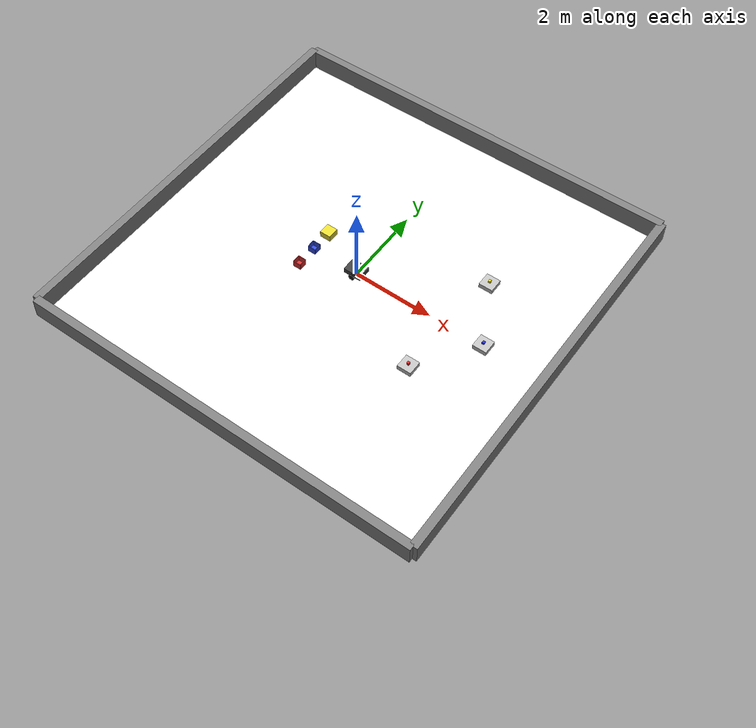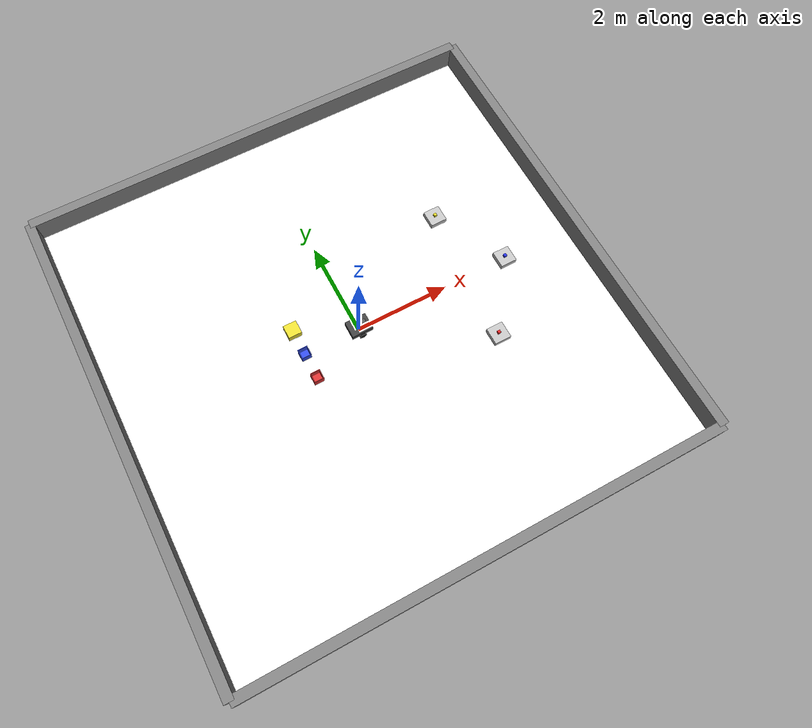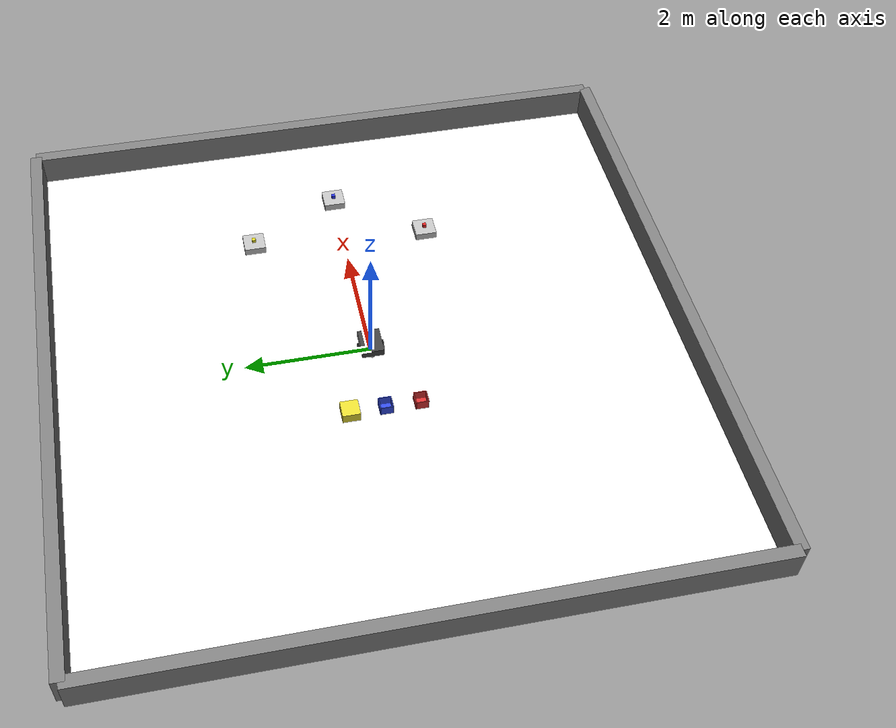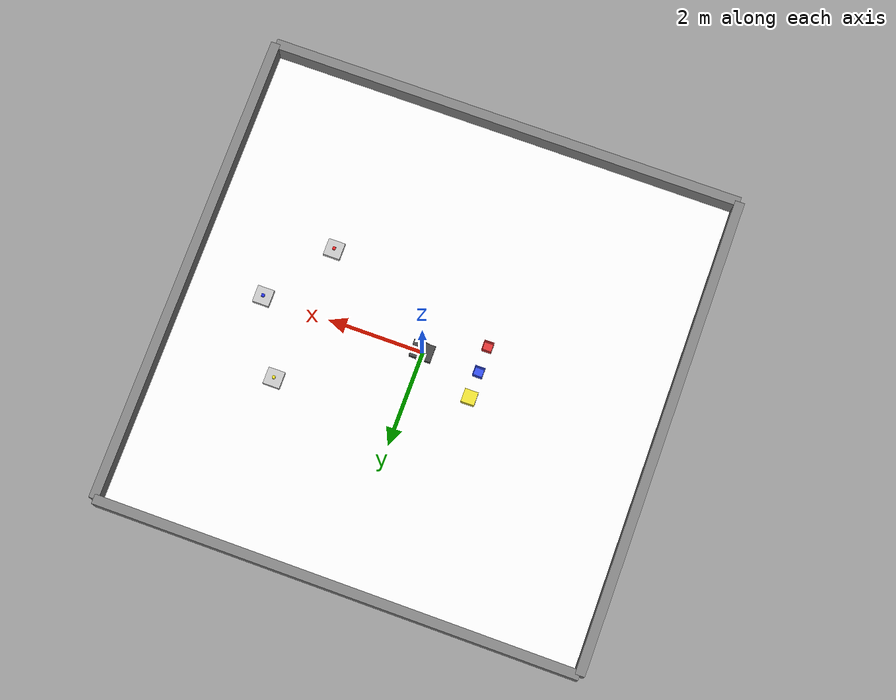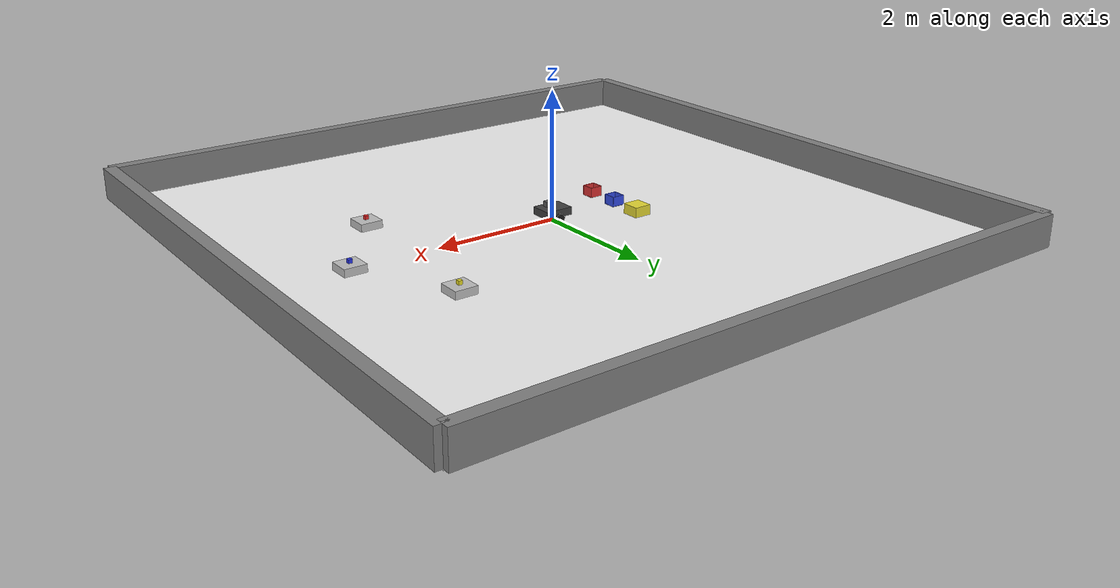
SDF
<?xml version="1.0"?>
<sdf version="1.9">
  <world name="pick_place_arena">
    <gravity>0 0 -9.81</gravity>

    <plugin filename="gz-sim-physics-system" name="gz::sim::systems::Physics"/>
    <plugin filename="gz-sim-user-commands-system" name="gz::sim::systems::UserCommands"/>
    <plugin filename="gz-sim-scene-broadcaster-system" name="gz::sim::systems::SceneBroadcaster"/>
    <plugin filename="gz-sim-sensors-system" name="gz::sim::systems::Sensors">
      <render_engine>ogre2</render_engine>
    </plugin>

    <light name="sun" type="directional">
      <cast_shadows>true</cast_shadows>
      <pose>0 0 10 0 0 0</pose>
      <diffuse>0.9 0.9 0.9 1</diffuse>
      <specular>0.2 0.2 0.2 1</specular>
      <attenuation>
        <range>1000</range>
        <constant>0.9</constant>
        <linear>0.01</linear>
        <quadratic>0.001</quadratic>
      </attenuation>
      <direction>-0.45 0.3 -0.85</direction>
    </light>

    <model name="floor">
      <static>true</static>
      <link name="floor_link">
        <pose>0 0 -0.01 0 0 0</pose>
        <collision name="collision">
          <geometry>
            <box>
              <size>10 10 0.02</size>
            </box>
          </geometry>
          <surface>
            <friction>
              <ode>
                <mu>1.0</mu>
                <mu2>1.0</mu2>
              </ode>
            </friction>
          </surface>
        </collision>
        <visual name="visual">
          <geometry>
            <box>
              <size>10 10 0.02</size>
            </box>
          </geometry>
          <material>
            <ambient>0.92 0.92 0.92 1</ambient>
            <diffuse>0.94 0.94 0.94 1</diffuse>
          </material>
        </visual>
      </link>
    </model>

    <model name="wall_north">
      <static>true</static>
      <link name="link">
        <pose>0 5.0 0.25 0 0 0</pose>
        <collision name="collision">
          <geometry>
            <box>
              <size>10 0.2 0.5</size>
            </box>
          </geometry>
        </collision>
        <visual name="visual">
          <geometry>
            <box>
              <size>10 0.2 0.5</size>
            </box>
          </geometry>
          <material>
            <ambient>0.4 0.4 0.4 1</ambient>
            <diffuse>0.5 0.5 0.5 1</diffuse>
          </material>
        </visual>
      </link>
    </model>

    <model name="wall_south">
      <static>true</static>
      <link name="link">
        <pose>0 -5.0 0.25 0 0 0</pose>
        <collision name="collision">
          <geometry>
            <box>
              <size>10 0.2 0.5</size>
            </box>
          </geometry>
        </collision>
        <visual name="visual">
          <geometry>
            <box>
              <size>10 0.2 0.5</size>
            </box>
          </geometry>
          <material>
            <ambient>0.4 0.4 0.4 1</ambient>
            <diffuse>0.5 0.5 0.5 1</diffuse>
          </material>
        </visual>
      </link>
    </model>

    <model name="wall_east">
      <static>true</static>
      <link name="link">
        <pose>5.0 0 0.25 0 0 0</pose>
        <collision name="collision">
          <geometry>
            <box>
              <size>0.2 10 0.5</size>
            </box>
          </geometry>
        </collision>
        <visual name="visual">
          <geometry>
            <box>
              <size>0.2 10 0.5</size>
            </box>
          </geometry>
          <material>
            <ambient>0.4 0.4 0.4 1</ambient>
            <diffuse>0.5 0.5 0.5 1</diffuse>
          </material>
        </visual>
      </link>
    </model>

    <model name="wall_west">
      <static>true</static>
      <link name="link">
        <pose>-5.0 0 0.25 0 0 0</pose>
        <collision name="collision">
          <geometry>
            <box>
              <size>0.2 10 0.5</size>
            </box>
          </geometry>
        </collision>
        <visual name="visual">
          <geometry>
            <box>
              <size>0.2 10 0.5</size>
            </box>
          </geometry>
          <material>
            <ambient>0.4 0.4 0.4 1</ambient>
            <diffuse>0.5 0.5 0.5 1</diffuse>
          </material>
        </visual>
      </link>
    </model>

    <include>
      <uri>../models/surrogate_rover</uri>
      <name>surrogate_rover</name>
      <pose>0 0 0 0 0 0</pose>
    </include>

    <include>
      <uri>../models/bin_red</uri>
      <name>bin_red_1</name>
      <pose>-1.2 -0.55 0 0 0 0</pose>
    </include>
    <include>
      <uri>../models/bin_blue</uri>
      <name>bin_blue_1</name>
      <pose>-1.2 0.0 0 0 0 0</pose>
    </include>
    <include>
      <uri>../models/bin_yellow</uri>
      <name>bin_yellow_1</name>
      <pose>-1.2 0.55 0 0 0 0</pose>
    </include>

    <include>
      <uri>../models/platform</uri>
      <name>platform_red</name>
      <pose>2.4 -1.4 0 0 0 0</pose>
    </include>
    <include>
      <uri>../models/platform</uri>
      <name>platform_blue</name>
      <pose>3.4 0.0 0 0 0 0</pose>
    </include>
    <include>
      <uri>../models/platform</uri>
      <name>platform_yellow</name>
      <pose>2.6 1.5 0 0 0 0</pose>
    </include>

    <include>
      <uri>../models/block_red</uri>
      <name>block_red_1</name>
      <pose>2.4 -1.4 0.12 0 0 0</pose>
    </include>
    <include>
      <uri>../models/block_blue</uri>
      <name>block_blue_1</name>
      <pose>3.4 0.0 0.12 0 0 0</pose>
    </include>
    <include>
      <uri>../models/block_yellow</uri>
      <name>block_yellow_1</name>
      <pose>2.6 1.5 0.12 0 0 0</pose>
    </include>
  </world>
</sdf>

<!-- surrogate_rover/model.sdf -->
<sdf version="1.9">
  <model name="surrogate_rover">
    <self_collide>false</self_collide>

    <link name="base_link">
      <pose>0 0 0.15 0 0 0</pose>
      <inertial>
        <mass>20.0</mass>
        <inertia>
          <ixx>0.65</ixx>
          <iyy>0.95</iyy>
          <izz>1.2</izz>
          <ixy>0.0</ixy>
          <ixz>0.0</ixz>
          <iyz>0.0</iyz>
        </inertia>
      </inertial>
      <collision name="base_collision">
        <geometry>
          <box>
            <size>0.45 0.35 0.12</size>
          </box>
        </geometry>
        <surface>
          <friction>
            <ode>
              <mu>0.8</mu>
              <mu2>0.8</mu2>
            </ode>
          </friction>
        </surface>
      </collision>
      <visual name="base_visual">
        <geometry>
          <box>
            <size>0.45 0.35 0.12</size>
          </box>
        </geometry>
        <material>
          <ambient>0.2 0.2 0.2 1</ambient>
          <diffuse>0.25 0.25 0.25 1</diffuse>
        </material>
      </visual>

      <sensor name="imu_sensor" type="imu">
        <pose>0 0 0.0 0 0 0</pose>
        <always_on>true</always_on>
        <update_rate>100</update_rate>
        <topic>/imu/data</topic>
      </sensor>
    </link>

    <link name="left_wheel_link">
      <pose>0.0 0.18 0.075 1.5708 0 0</pose>
      <inertial>
        <mass>1.0</mass>
        <inertia>
          <ixx>0.002</ixx>
          <iyy>0.001</iyy>
          <izz>0.002</izz>
          <ixy>0.0</ixy>
          <ixz>0.0</ixz>
          <iyz>0.0</iyz>
        </inertia>
      </inertial>
      <collision name="left_wheel_collision">
        <geometry>
          <cylinder>
            <radius>0.075</radius>
            <length>0.05</length>
          </cylinder>
        </geometry>
      </collision>
      <visual name="left_wheel_visual">
        <geometry>
          <cylinder>
            <radius>0.075</radius>
            <length>0.05</length>
          </cylinder>
        </geometry>
        <material>
          <ambient>0.05 0.05 0.05 1</ambient>
          <diffuse>0.1 0.1 0.1 1</diffuse>
        </material>
      </visual>
    </link>

    <link name="right_wheel_link">
      <pose>0.0 -0.18 0.075 1.5708 0 0</pose>
      <inertial>
        <mass>1.0</mass>
        <inertia>
          <ixx>0.002</ixx>
          <iyy>0.001</iyy>
          <izz>0.002</izz>
          <ixy>0.0</ixy>
          <ixz>0.0</ixz>
          <iyz>0.0</iyz>
        </inertia>
      </inertial>
      <collision name="right_wheel_collision">
        <geometry>
          <cylinder>
            <radius>0.075</radius>
            <length>0.05</length>
          </cylinder>
        </geometry>
      </collision>
      <visual name="right_wheel_visual">
        <geometry>
          <cylinder>
            <radius>0.075</radius>
            <length>0.05</length>
          </cylinder>
        </geometry>
        <material>
          <ambient>0.05 0.05 0.05 1</ambient>
          <diffuse>0.1 0.1 0.1 1</diffuse>
        </material>
      </visual>
    </link>

    <link name="rear_caster_link">
      <pose>-0.16 0 0.03 0 0 0</pose>
      <inertial>
        <mass>0.2</mass>
        <inertia>
          <ixx>0.0002</ixx>
          <iyy>0.0002</iyy>
          <izz>0.0002</izz>
          <ixy>0.0</ixy>
          <ixz>0.0</ixz>
          <iyz>0.0</iyz>
        </inertia>
      </inertial>
      <collision name="rear_caster_collision">
        <geometry>
          <sphere>
            <radius>0.03</radius>
          </sphere>
        </geometry>
        <surface>
          <friction>
            <ode>
              <mu>0.3</mu>
              <mu2>0.3</mu2>
            </ode>
          </friction>
        </surface>
      </collision>
      <visual name="rear_caster_visual">
        <geometry>
          <sphere>
            <radius>0.03</radius>
          </sphere>
        </geometry>
      </visual>
    </link>

    <link name="sensor_head_link">
      <pose>0.1 0 0.28 0 0 0</pose>
      <inertial>
        <mass>0.8</mass>
        <inertia>
          <ixx>0.002</ixx>
          <iyy>0.002</iyy>
          <izz>0.002</izz>
          <ixy>0.0</ixy>
          <ixz>0.0</ixz>
          <iyz>0.0</iyz>
        </inertia>
      </inertial>
      <collision name="sensor_head_collision">
        <geometry>
          <box>
            <size>0.08 0.08 0.08</size>
          </box>
        </geometry>
      </collision>
      <visual name="sensor_head_visual">
        <geometry>
          <box>
            <size>0.08 0.08 0.08</size>
          </box>
        </geometry>
        <material>
          <ambient>0.3 0.3 0.3 1</ambient>
          <diffuse>0.35 0.35 0.35 1</diffuse>
        </material>
      </visual>

      <sensor name="lidar_sensor" type="gpu_lidar">
        <pose>0 0 0.05 0 0 0</pose>
        <always_on>true</always_on>
        <update_rate>20</update_rate>
        <topic>/scan</topic>
        <lidar>
          <scan>
            <horizontal>
              <samples>720</samples>
              <resolution>1</resolution>
              <min_angle>-3.14159</min_angle>
              <max_angle>3.14159</max_angle>
            </horizontal>
          </scan>
          <range>
            <min>0.12</min>
            <max>15.0</max>
            <resolution>0.01</resolution>
          </range>
        </lidar>
      </sensor>

      <sensor name="depth_camera_sensor" type="depth_camera">
        <pose>0.1 0 0.0 0 0 0</pose>
        <always_on>true</always_on>
        <update_rate>15</update_rate>
        <topic>/camera/depth/image_raw</topic>
        <camera>
          <horizontal_fov>1.047</horizontal_fov>
          <image>
            <width>640</width>
            <height>480</height>
            <format>R_FLOAT32</format>
          </image>
          <clip>
            <near>0.2</near>
            <far>8.0</far>
          </clip>
          <camera_info_topic>/camera/depth/camera_info</camera_info_topic>
        </camera>
      </sensor>
    </link>

    <joint name="left_wheel_joint" type="revolute">
      <parent>base_link</parent>
      <child>left_wheel_link</child>
      <axis>
        <xyz>0 1 0</xyz>
        <limit>
          <lower>-1000000000</lower>
          <upper>1000000000</upper>
          <effort>1000000</effort>
        </limit>
      </axis>
    </joint>

    <joint name="right_wheel_joint" type="revolute">
      <parent>base_link</parent>
      <child>right_wheel_link</child>
      <axis>
        <xyz>0 1 0</xyz>
        <limit>
          <lower>-1000000000</lower>
          <upper>1000000000</upper>
          <effort>1000000</effort>
        </limit>
      </axis>
    </joint>

    <joint name="rear_caster_joint" type="fixed">
      <parent>base_link</parent>
      <child>rear_caster_link</child>
    </joint>

    <joint name="sensor_head_joint" type="fixed">
      <parent>base_link</parent>
      <child>sensor_head_link</child>
    </joint>

    <plugin
      filename="gz-sim-diff-drive-system"
      name="gz::sim::systems::DiffDrive">
      <left_joint>left_wheel_joint</left_joint>
      <right_joint>right_wheel_joint</right_joint>
      <wheel_separation>0.36</wheel_separation>
      <wheel_radius>0.075</wheel_radius>
      <topic>/model/surrogate_rover/cmd_vel</topic>
      <odom_topic>/model/surrogate_rover/odometry</odom_topic>
      <tf_topic>/model/surrogate_rover/tf</tf_topic>
      <frame_id>odom</frame_id>
      <child_frame_id>base_link</child_frame_id>
      <odom_publish_frequency>30</odom_publish_frequency>
    </plugin>

    <plugin
      filename="gz-sim-joint-state-publisher-system"
      name="gz::sim::systems::JointStatePublisher">
    </plugin>
  </model>
</sdf>

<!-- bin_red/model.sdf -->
<sdf version="1.9">
  <model name="bin_red">
    <static>true</static>
    <link name="link">
      <pose>0 0 0.08 0 0 0</pose>
      <collision name="bottom_collision">
        <pose>0 0 -0.075 0 0 0</pose>
        <geometry>
          <box>
            <size>0.205 0.205 0.01</size>
          </box>
        </geometry>
      </collision>
      <collision name="north_wall_collision">
        <pose>0 0.0975 0 0 0 0</pose>
        <geometry>
          <box>
            <size>0.205 0.01 0.16</size>
          </box>
        </geometry>
      </collision>
      <collision name="south_wall_collision">
        <pose>0 -0.0975 0 0 0 0</pose>
        <geometry>
          <box>
            <size>0.205 0.01 0.16</size>
          </box>
        </geometry>
      </collision>
      <collision name="east_wall_collision">
        <pose>0.0975 0 0 0 0 0</pose>
        <geometry>
          <box>
            <size>0.01 0.185 0.16</size>
          </box>
        </geometry>
      </collision>
      <collision name="west_wall_collision">
        <pose>-0.0975 0 0 0 0 0</pose>
        <geometry>
          <box>
            <size>0.01 0.185 0.16</size>
          </box>
        </geometry>
      </collision>
      <visual name="bottom_visual">
        <pose>0 0 -0.075 0 0 0</pose>
        <geometry>
          <box>
            <size>0.205 0.205 0.01</size>
          </box>
        </geometry>
        <material>
          <ambient>0.7 0.1 0.1 1</ambient>
          <diffuse>0.85 0.2 0.2 1</diffuse>
        </material>
      </visual>
      <visual name="north_wall_visual">
        <pose>0 0.0975 0 0 0 0</pose>
        <geometry>
          <box>
            <size>0.205 0.01 0.16</size>
          </box>
        </geometry>
        <material>
          <ambient>0.7 0.1 0.1 1</ambient>
          <diffuse>0.85 0.2 0.2 1</diffuse>
        </material>
      </visual>
      <visual name="south_wall_visual">
        <pose>0 -0.0975 0 0 0 0</pose>
        <geometry>
          <box>
            <size>0.205 0.01 0.16</size>
          </box>
        </geometry>
        <material>
          <ambient>0.7 0.1 0.1 1</ambient>
          <diffuse>0.85 0.2 0.2 1</diffuse>
        </material>
      </visual>
      <visual name="east_wall_visual">
        <pose>0.0975 0 0 0 0 0</pose>
        <geometry>
          <box>
            <size>0.01 0.185 0.16</size>
          </box>
        </geometry>
        <material>
          <ambient>0.7 0.1 0.1 1</ambient>
          <diffuse>0.85 0.2 0.2 1</diffuse>
        </material>
      </visual>
      <visual name="west_wall_visual">
        <pose>-0.0975 0 0 0 0 0</pose>
        <geometry>
          <box>
            <size>0.01 0.185 0.16</size>
          </box>
        </geometry>
        <material>
          <ambient>0.7 0.1 0.1 1</ambient>
          <diffuse>0.85 0.2 0.2 1</diffuse>
        </material>
      </visual>
    </link>
    <plugin
      filename="libgz-sim-pose-publisher-system.so"
      name="gz::sim::systems::PosePublisher">
      <publish_link_pose>false</publish_link_pose>
      <publish_model_pose>true</publish_model_pose>
      <use_pose_vector_msg>true</use_pose_vector_msg>
      <update_frequency>10</update_frequency>
    </plugin>
  </model>
</sdf>

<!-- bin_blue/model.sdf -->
<sdf version="1.9">
  <model name="bin_blue">
    <static>true</static>
    <link name="link">
      <pose>0 0 0.08 0 0 0</pose>
      <collision name="bottom_collision">
        <pose>0 0 -0.075 0 0 0</pose>
        <geometry>
          <box>
            <size>0.205 0.205 0.01</size>
          </box>
        </geometry>
      </collision>
      <collision name="north_wall_collision">
        <pose>0 0.0975 0 0 0 0</pose>
        <geometry>
          <box>
            <size>0.205 0.01 0.16</size>
          </box>
        </geometry>
      </collision>
      <collision name="south_wall_collision">
        <pose>0 -0.0975 0 0 0 0</pose>
        <geometry>
          <box>
            <size>0.205 0.01 0.16</size>
          </box>
        </geometry>
      </collision>
      <collision name="east_wall_collision">
        <pose>0.0975 0 0 0 0 0</pose>
        <geometry>
          <box>
            <size>0.01 0.185 0.16</size>
          </box>
        </geometry>
      </collision>
      <collision name="west_wall_collision">
        <pose>-0.0975 0 0 0 0 0</pose>
        <geometry>
          <box>
            <size>0.01 0.185 0.16</size>
          </box>
        </geometry>
      </collision>
      <visual name="bottom_visual">
        <pose>0 0 -0.075 0 0 0</pose>
        <geometry>
          <box>
            <size>0.205 0.205 0.01</size>
          </box>
        </geometry>
        <material>
          <ambient>0.1 0.1 0.7 1</ambient>
          <diffuse>0.2 0.3 0.9 1</diffuse>
        </material>
      </visual>
      <visual name="north_wall_visual">
        <pose>0 0.0975 0 0 0 0</pose>
        <geometry>
          <box>
            <size>0.205 0.01 0.16</size>
          </box>
        </geometry>
        <material>
          <ambient>0.1 0.1 0.7 1</ambient>
          <diffuse>0.2 0.3 0.9 1</diffuse>
        </material>
      </visual>
      <visual name="south_wall_visual">
        <pose>0 -0.0975 0 0 0 0</pose>
        <geometry>
          <box>
            <size>0.205 0.01 0.16</size>
          </box>
        </geometry>
        <material>
          <ambient>0.1 0.1 0.7 1</ambient>
          <diffuse>0.2 0.3 0.9 1</diffuse>
        </material>
      </visual>
      <visual name="east_wall_visual">
        <pose>0.0975 0 0 0 0 0</pose>
        <geometry>
          <box>
            <size>0.01 0.185 0.16</size>
          </box>
        </geometry>
        <material>
          <ambient>0.1 0.1 0.7 1</ambient>
          <diffuse>0.2 0.3 0.9 1</diffuse>
        </material>
      </visual>
      <visual name="west_wall_visual">
        <pose>-0.0975 0 0 0 0 0</pose>
        <geometry>
          <box>
            <size>0.01 0.185 0.16</size>
          </box>
        </geometry>
        <material>
          <ambient>0.1 0.1 0.7 1</ambient>
          <diffuse>0.2 0.3 0.9 1</diffuse>
        </material>
      </visual>
    </link>
    <plugin
      filename="libgz-sim-pose-publisher-system.so"
      name="gz::sim::systems::PosePublisher">
      <publish_link_pose>false</publish_link_pose>
      <publish_model_pose>true</publish_model_pose>
      <use_pose_vector_msg>true</use_pose_vector_msg>
      <update_frequency>10</update_frequency>
    </plugin>
  </model>
</sdf>

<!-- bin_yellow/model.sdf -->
<sdf version="1.9">
  <model name="bin_yellow">
    <static>true</static>
    <link name="link">
      <pose>0 0 0.08 0 0 0</pose>
      <collision name="collision">
        <geometry>
          <box>
            <size>0.28 0.28 0.16</size>
          </box>
        </geometry>
      </collision>
      <visual name="visual">
        <geometry>
          <box>
            <size>0.28 0.28 0.16</size>
          </box>
        </geometry>
        <material>
          <ambient>0.75 0.75 0.1 1</ambient>
          <diffuse>0.9 0.85 0.2 1</diffuse>
        </material>
      </visual>
    </link>
  </model>
</sdf>

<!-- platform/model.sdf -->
<sdf version="1.9">
  <model name="platform">
    <static>true</static>
    <link name="link">
      <pose>0 0 0.06 0 0 0</pose>
      <collision name="collision">
        <geometry>
          <box>
            <size>0.35 0.35 0.12</size>
          </box>
        </geometry>
      </collision>
      <visual name="visual">
        <geometry>
          <box>
            <size>0.35 0.35 0.12</size>
          </box>
        </geometry>
        <material>
          <ambient>0.7 0.7 0.7 1</ambient>
          <diffuse>0.75 0.75 0.75 1</diffuse>
        </material>
      </visual>
    </link>
    <plugin
      filename="libgz-sim-pose-publisher-system.so"
      name="gz::sim::systems::PosePublisher">
      <publish_link_pose>false</publish_link_pose>
      <publish_model_pose>true</publish_model_pose>
      <use_pose_vector_msg>true</use_pose_vector_msg>
      <update_frequency>10</update_frequency>
    </plugin>
  </model>
</sdf>

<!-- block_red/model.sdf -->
<sdf version="1.9">
  <model name="block_red">
    <static>false</static>
    <allow_auto_disable>false</allow_auto_disable>
    <link name="link">
      <pose>0 0 0.03 0 0 0</pose>
      <inertial>
        <mass>0.25</mass>
        <inertia>
          <ixx>0.00015</ixx>
          <iyy>0.00015</iyy>
          <izz>0.00015</izz>
          <ixy>0.0</ixy>
          <ixz>0.0</ixz>
          <iyz>0.0</iyz>
        </inertia>
      </inertial>
      <collision name="collision">
        <geometry>
          <box>
            <size>0.06 0.06 0.06</size>
          </box>
        </geometry>
      </collision>
      <visual name="visual">
        <geometry>
          <box>
            <size>0.06 0.06 0.06</size>
          </box>
        </geometry>
        <material>
          <ambient>0.8 0.1 0.1 1</ambient>
          <diffuse>0.9 0.15 0.15 1</diffuse>
        </material>
      </visual>
    </link>
    <plugin
      filename="libgz-sim-pose-publisher-system.so"
      name="gz::sim::systems::PosePublisher">
      <publish_link_pose>false</publish_link_pose>
      <publish_model_pose>true</publish_model_pose>
      <use_pose_vector_msg>true</use_pose_vector_msg>
      <update_frequency>10</update_frequency>
    </plugin>
  </model>
</sdf>

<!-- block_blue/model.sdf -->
<sdf version="1.9">
  <model name="block_blue">
    <static>false</static>
    <allow_auto_disable>false</allow_auto_disable>
    <link name="link">
      <pose>0 0 0.03 0 0 0</pose>
      <inertial>
        <mass>0.25</mass>
        <inertia>
          <ixx>0.00015</ixx>
          <iyy>0.00015</iyy>
          <izz>0.00015</izz>
          <ixy>0.0</ixy>
          <ixz>0.0</ixz>
          <iyz>0.0</iyz>
        </inertia>
      </inertial>
      <collision name="collision">
        <geometry>
          <box>
            <size>0.06 0.06 0.06</size>
          </box>
        </geometry>
      </collision>
      <visual name="visual">
        <geometry>
          <box>
            <size>0.06 0.06 0.06</size>
          </box>
        </geometry>
        <material>
          <ambient>0.1 0.1 0.8 1</ambient>
          <diffuse>0.15 0.2 0.9 1</diffuse>
        </material>
      </visual>
    </link>
    <plugin
      filename="libgz-sim-pose-publisher-system.so"
      name="gz::sim::systems::PosePublisher">
      <publish_link_pose>false</publish_link_pose>
      <publish_model_pose>true</publish_model_pose>
      <use_pose_vector_msg>true</use_pose_vector_msg>
      <update_frequency>10</update_frequency>
    </plugin>
  </model>
</sdf>

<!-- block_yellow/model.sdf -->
<sdf version="1.9">
  <model name="block_yellow">
    <static>false</static>
    <allow_auto_disable>false</allow_auto_disable>
    <link name="link">
      <pose>0 0 0.03 0 0 0</pose>
      <inertial>
        <mass>0.25</mass>
        <inertia>
          <ixx>0.00015</ixx>
          <iyy>0.00015</iyy>
          <izz>0.00015</izz>
          <ixy>0.0</ixy>
          <ixz>0.0</ixz>
          <iyz>0.0</iyz>
        </inertia>
      </inertial>
      <collision name="collision">
        <geometry>
          <box>
            <size>0.06 0.06 0.06</size>
          </box>
        </geometry>
      </collision>
      <visual name="visual">
        <geometry>
          <box>
            <size>0.06 0.06 0.06</size>
          </box>
        </geometry>
        <material>
          <ambient>0.8 0.8 0.1 1</ambient>
          <diffuse>0.9 0.85 0.15 1</diffuse>
        </material>
      </visual>
    </link>
    <plugin
      filename="libgz-sim-pose-publisher-system.so"
      name="gz::sim::systems::PosePublisher">
      <publish_link_pose>false</publish_link_pose>
      <publish_model_pose>true</publish_model_pose>
      <use_pose_vector_msg>true</use_pose_vector_msg>
      <update_frequency>10</update_frequency>
    </plugin>
  </model>
</sdf>
